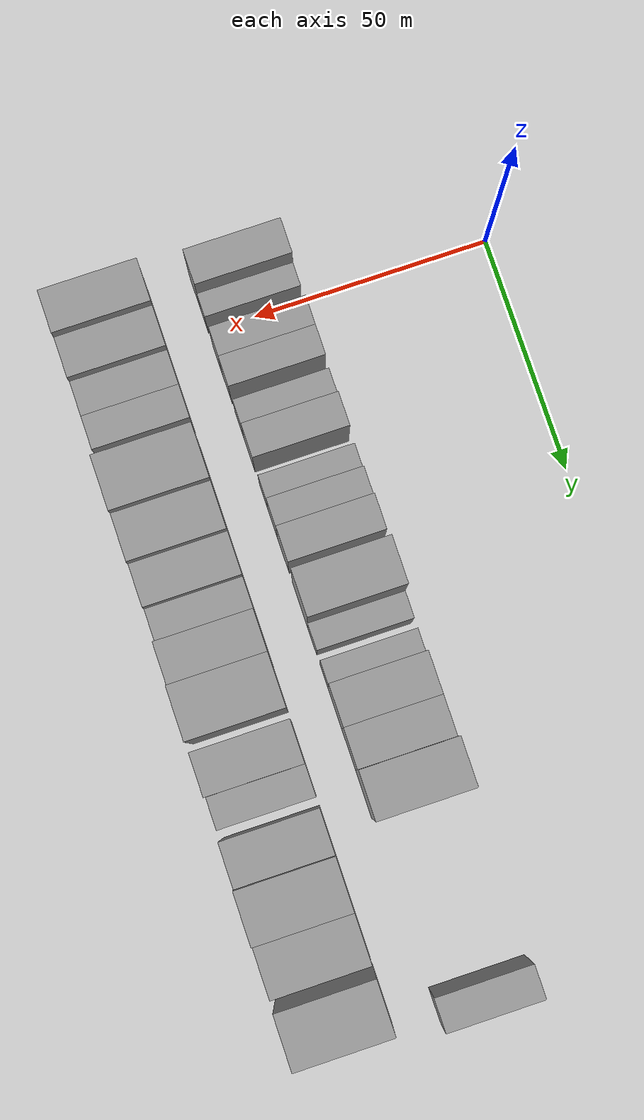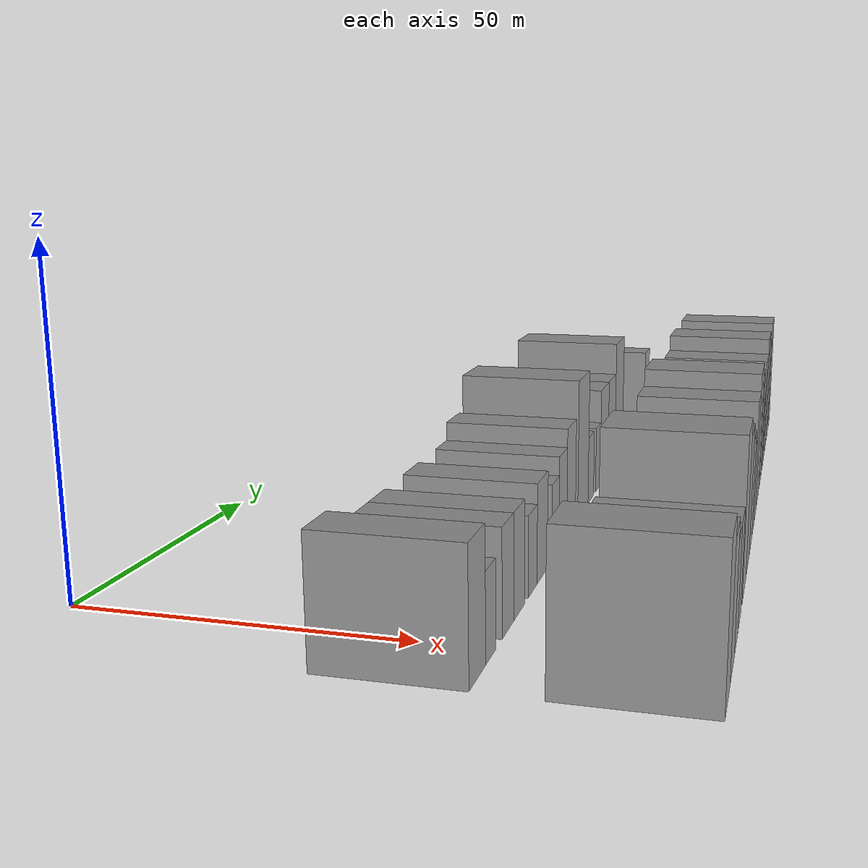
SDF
<sdf version="1.6">
 <world name="default">
  <model name="building_35">
   <static>1</static>
   <pose>50.0000 -8.4018 0 0.000000 0.000000 0.000000</pose>
   <link name="link">
    <pose>0 0 9.00 0 0 0</pose>
    <collision name="collision"><geometry><box><size>20.0000 7.3455 18.0000</size></box></geometry></collision>
    <visual name="visual">
     <cast_shadows>0</cast_shadows>
     <geometry><box><size>20.0000 7.3455 18.0000</size></box></geometry>
     <material>
      <script>
       <uri>model://grey_wall/materials/scripts</uri>
       <uri>model://grey_wall/materials/textures</uri>
       <name>vrc/grey_wall</name>
      </script>
     </material>
    </visual>
   </link>
  </model>
  <model name="building_36">
   <static>1</static>
   <pose>50.0000 -2.2565 0 0.000000 0.000000 0.000000</pose>
   <link name="link">
    <pose>0 0 6.00 0 0 0</pose>
    <collision name="collision"><geometry><box><size>20.0000 4.9450 12.0000</size></box></geometry></collision>
    <visual name="visual">
     <cast_shadows>0</cast_shadows>
     <geometry><box><size>20.0000 4.9450 12.0000</size></box></geometry>
     <material>
      <script>
       <uri>model://grey_wall/materials/scripts</uri>
       <uri>model://grey_wall/materials/textures</uri>
       <name>vrc/grey_wall</name>
      </script>
     </material>
    </visual>
   </link>
  </model>
  <model name="building_37">
   <static>1</static>
   <pose>50.0000 6.2791 0 0.000000 0.000000 0.000000</pose>
   <link name="link">
    <pose>0 0 7.50 0 0 0</pose>
    <collision name="collision"><geometry><box><size>20.0000 6.1263 15.0000</size></box></geometry></collision>
    <visual name="visual">
     <cast_shadows>0</cast_shadows>
     <geometry><box><size>20.0000 6.1263 15.0000</size></box></geometry>
     <material>
      <script>
       <uri>model://grey_wall/materials/scripts</uri>
       <uri>model://grey_wall/materials/textures</uri>
       <name>vrc/grey_wall</name>
      </script>
     </material>
    </visual>
   </link>
  </model>
  <model name="building_38">
   <static>1</static>
   <pose>50.0000 12.5242 0 0.000000 0.000000 0.000000</pose>
   <link name="link">
    <pose>0 0 7.50 0 0 0</pose>
    <collision name="collision"><geometry><box><size>20.0000 6.3640 15.0000</size></box></geometry></collision>
    <visual name="visual">
     <cast_shadows>0</cast_shadows>
     <geometry><box><size>20.0000 6.3640 15.0000</size></box></geometry>
     <material>
      <script>
       <uri>model://grey_wall/materials/scripts</uri>
       <uri>model://grey_wall/materials/textures</uri>
       <name>vrc/grey_wall</name>
      </script>
     </material>
    </visual>
   </link>
  </model>
  <model name="building_39">
   <static>1</static>
   <pose>50.0000 20.5519 0 0.000000 0.000000 0.000000</pose>
   <link name="link">
    <pose>0 0 6.00 0 0 0</pose>
    <collision name="collision"><geometry><box><size>20.0000 5.6913 12.0000</size></box></geometry></collision>
    <visual name="visual">
     <cast_shadows>0</cast_shadows>
     <geometry><box><size>20.0000 5.6913 12.0000</size></box></geometry>
     <material>
      <script>
       <uri>model://grey_wall/materials/scripts</uri>
       <uri>model://grey_wall/materials/textures</uri>
       <name>vrc/grey_wall</name>
      </script>
     </material>
    </visual>
   </link>
  </model>
  <model name="building_40">
   <static>1</static>
   <pose>50.0000 26.9667 0 0.000000 0.000000 0.000000</pose>
   <link name="link">
    <pose>0 0 7.50 0 0 0</pose>
    <collision name="collision"><geometry><box><size>20.0000 7.1382 15.0000</size></box></geometry></collision>
    <visual name="visual">
     <cast_shadows>0</cast_shadows>
     <geometry><box><size>20.0000 7.1382 15.0000</size></box></geometry>
     <material>
      <script>
       <uri>model://grey_wall/materials/scripts</uri>
       <uri>model://grey_wall/materials/textures</uri>
       <name>vrc/grey_wall</name>
      </script>
     </material>
    </visual>
   </link>
  </model>
  <model name="building_41">
   <static>1</static>
   <pose>50.0000 36.2160 0 0.000000 0.000000 0.000000</pose>
   <link name="link">
    <pose>0 0 6.00 0 0 0</pose>
    <collision name="collision"><geometry><box><size>20.0000 5.3605 12.0000</size></box></geometry></collision>
    <visual name="visual">
     <cast_shadows>0</cast_shadows>
     <geometry><box><size>20.0000 5.3605 12.0000</size></box></geometry>
     <material>
      <script>
       <uri>model://grey_wall/materials/scripts</uri>
       <uri>model://grey_wall/materials/textures</uri>
       <name>vrc/grey_wall</name>
      </script>
     </material>
    </visual>
   </link>
  </model>
  <model name="building_42">
   <static>1</static>
   <pose>50.0000 41.9826 0 0.000000 0.000000 0.000000</pose>
   <link name="link">
    <pose>0 0 7.50 0 0 0</pose>
    <collision name="collision"><geometry><box><size>20.0000 6.1726 15.0000</size></box></geometry></collision>
    <visual name="visual">
     <cast_shadows>0</cast_shadows>
     <geometry><box><size>20.0000 6.1726 15.0000</size></box></geometry>
     <material>
      <script>
       <uri>model://grey_wall/materials/scripts</uri>
       <uri>model://grey_wall/materials/textures</uri>
       <name>vrc/grey_wall</name>
      </script>
     </material>
    </visual>
   </link>
  </model>
  <model name="building_43">
   <static>1</static>
   <pose>50.0000 48.7520 0 0.000000 0.000000 0.000000</pose>
   <link name="link">
    <pose>0 0 9.00 0 0 0</pose>
    <collision name="collision"><geometry><box><size>20.0000 7.3661 18.0000</size></box></geometry></collision>
    <visual name="visual">
     <cast_shadows>0</cast_shadows>
     <geometry><box><size>20.0000 7.3661 18.0000</size></box></geometry>
     <material>
      <script>
       <uri>model://grey_wall/materials/scripts</uri>
       <uri>model://grey_wall/materials/textures</uri>
       <name>vrc/grey_wall</name>
      </script>
     </material>
    </visual>
   </link>
  </model>
  <model name="building_44">
   <static>1</static>
   <pose>50.0000 59.3353 0 0.000000 0.000000 0.000000</pose>
   <link name="link">
    <pose>0 0 12.00 0 0 0</pose>
    <collision name="collision"><geometry><box><size>20.0000 9.8005 24.0000</size></box></geometry></collision>
    <visual name="visual">
     <cast_shadows>0</cast_shadows>
     <geometry><box><size>20.0000 9.8005 24.0000</size></box></geometry>
     <material>
      <script>
       <uri>model://grey_wall/materials/scripts</uri>
       <uri>model://grey_wall/materials/textures</uri>
       <name>vrc/grey_wall</name>
      </script>
     </material>
    </visual>
   </link>
  </model>
  <model name="building_45">
   <static>1</static>
   <pose>50.0000 67.0383 0 0.000000 0.000000 0.000000</pose>
   <link name="link">
    <pose>0 0 6.00 0 0 0</pose>
    <collision name="collision"><geometry><box><size>20.0000 5.6055 12.0000</size></box></geometry></collision>
    <visual name="visual">
     <cast_shadows>0</cast_shadows>
     <geometry><box><size>20.0000 5.6055 12.0000</size></box></geometry>
     <material>
      <script>
       <uri>model://grey_wall/materials/scripts</uri>
       <uri>model://grey_wall/materials/textures</uri>
       <name>vrc/grey_wall</name>
      </script>
     </material>
    </visual>
   </link>
  </model>
  <model name="building_46">
   <static>1</static>
   <pose>50.0000 74.3523 0 0.000000 0.000000 0.000000</pose>
   <link name="link">
    <pose>0 0 6.00 0 0 0</pose>
    <collision name="collision"><geometry><box><size>20.0000 5.0224 12.0000</size></box></geometry></collision>
    <visual name="visual">
     <cast_shadows>0</cast_shadows>
     <geometry><box><size>20.0000 5.0224 12.0000</size></box></geometry>
     <material>
      <script>
       <uri>model://grey_wall/materials/scripts</uri>
       <uri>model://grey_wall/materials/textures</uri>
       <name>vrc/grey_wall</name>
      </script>
     </material>
    </visual>
   </link>
  </model>
  <model name="building_47">
   <static>1</static>
   <pose>50.0000 81.2639 0 0.000000 0.000000 0.000000</pose>
   <link name="link">
    <pose>0 0 9.00 0 0 0</pose>
    <collision name="collision"><geometry><box><size>20.0000 8.8008 18.0000</size></box></geometry></collision>
    <visual name="visual">
     <cast_shadows>0</cast_shadows>
     <geometry><box><size>20.0000 8.8008 18.0000</size></box></geometry>
     <material>
      <script>
       <uri>model://grey_wall/materials/scripts</uri>
       <uri>model://grey_wall/materials/textures</uri>
       <name>vrc/grey_wall</name>
      </script>
     </material>
    </visual>
   </link>
  </model>
  <model name="building_48">
   <static>1</static>
   <pose>50.0000 89.8656 0 0.000000 0.000000 0.000000</pose>
   <link name="link">
    <pose>0 0 9.00 0 0 0</pose>
    <collision name="collision"><geometry><box><size>20.0000 8.4025 18.0000</size></box></geometry></collision>
    <visual name="visual">
     <cast_shadows>0</cast_shadows>
     <geometry><box><size>20.0000 8.4025 18.0000</size></box></geometry>
     <material>
      <script>
       <uri>model://grey_wall/materials/scripts</uri>
       <uri>model://grey_wall/materials/textures</uri>
       <name>vrc/grey_wall</name>
      </script>
     </material>
    </visual>
   </link>
  </model>
  <model name="building_49">
   <static>1</static>
   <pose>50.0000 99.1146 0 0.000000 0.000000 0.000000</pose>
   <link name="link">
    <pose>0 0 12.00 0 0 0</pose>
    <collision name="collision"><geometry><box><size>20.0000 10.0955 24.0000</size></box></geometry></collision>
    <visual name="visual">
     <cast_shadows>0</cast_shadows>
     <geometry><box><size>20.0000 10.0955 24.0000</size></box></geometry>
     <material>
      <script>
       <uri>model://grey_wall/materials/scripts</uri>
       <uri>model://grey_wall/materials/textures</uri>
       <name>vrc/grey_wall</name>
      </script>
     </material>
    </visual>
   </link>
  </model>
  <model name="building_50">
   <static>1</static>
   <pose>50.0000 142.6210 0 0.000000 0.000000 0.000000</pose>
   <link name="link">
    <pose>0 0 7.50 0 0 0</pose>
    <collision name="collision"><geometry><box><size>20.0000 6.9724 15.0000</size></box></geometry></collision>
    <visual name="visual">
     <cast_shadows>0</cast_shadows>
     <geometry><box><size>20.0000 6.9724 15.0000</size></box></geometry>
     <material>
      <script>
       <uri>model://grey_wall/materials/scripts</uri>
       <uri>model://grey_wall/materials/textures</uri>
       <name>vrc/grey_wall</name>
      </script>
     </material>
    </visual>
   </link>
  </model>
  <model name="building_97">
   <static>1</static>
   <pose>79.0000 -7.8592 0 0.000000 0.000000 0.000000</pose>
   <link name="link">
    <pose>0 0 10.50 0 0 0</pose>
    <collision name="collision"><geometry><box><size>20.0000 8.8531 21.0000</size></box></geometry></collision>
    <visual name="visual">
     <cast_shadows>0</cast_shadows>
     <geometry><box><size>20.0000 8.8531 21.0000</size></box></geometry>
     <material>
      <script>
       <uri>model://grey_wall/materials/scripts</uri>
       <uri>model://grey_wall/materials/textures</uri>
       <name>vrc/grey_wall</name>
      </script>
     </material>
    </visual>
   </link>
  </model>
  <model name="building_98">
   <static>1</static>
   <pose>79.0000 0.7653 0 0.000000 0.000000 0.000000</pose>
   <link name="link">
    <pose>0 0 9.00 0 0 0</pose>
    <collision name="collision"><geometry><box><size>20.0000 8.3959 18.0000</size></box></geometry></collision>
    <visual name="visual">
     <cast_shadows>0</cast_shadows>
     <geometry><box><size>20.0000 8.3959 18.0000</size></box></geometry>
     <material>
      <script>
       <uri>model://grey_wall/materials/scripts</uri>
       <uri>model://grey_wall/materials/textures</uri>
       <name>vrc/grey_wall</name>
      </script>
     </material>
    </visual>
   </link>
  </model>
  <model name="building_99">
   <static>1</static>
   <pose>79.0000 8.5710 0 0.000000 0.000000 0.000000</pose>
   <link name="link">
    <pose>0 0 7.50 0 0 0</pose>
    <collision name="collision"><geometry><box><size>20.0000 7.2154 15.0000</size></box></geometry></collision>
    <visual name="visual">
     <cast_shadows>0</cast_shadows>
     <geometry><box><size>20.0000 7.2154 15.0000</size></box></geometry>
     <material>
      <script>
       <uri>model://grey_wall/materials/scripts</uri>
       <uri>model://grey_wall/materials/textures</uri>
       <name>vrc/grey_wall</name>
      </script>
     </material>
    </visual>
   </link>
  </model>
  <model name="building_100">
   <static>1</static>
   <pose>79.0000 15.6614 0 0.000000 0.000000 0.000000</pose>
   <link name="link">
    <pose>0 0 7.50 0 0 0</pose>
    <collision name="collision"><geometry><box><size>20.0000 6.9654 15.0000</size></box></geometry></collision>
    <visual name="visual">
     <cast_shadows>0</cast_shadows>
     <geometry><box><size>20.0000 6.9654 15.0000</size></box></geometry>
     <material>
      <script>
       <uri>model://grey_wall/materials/scripts</uri>
       <uri>model://grey_wall/materials/textures</uri>
       <name>vrc/grey_wall</name>
      </script>
     </material>
    </visual>
   </link>
  </model>
  <model name="building_101">
   <static>1</static>
   <pose>79.0000 27.7389 0 0.000000 0.000000 0.000000</pose>
   <link name="link">
    <pose>0 0 12.00 0 0 0</pose>
    <collision name="collision"><geometry><box><size>20.0000 11.1896 24.0000</size></box></geometry></collision>
    <visual name="visual">
     <cast_shadows>0</cast_shadows>
     <geometry><box><size>20.0000 11.1896 24.0000</size></box></geometry>
     <material>
      <script>
       <uri>model://grey_wall/materials/scripts</uri>
       <uri>model://grey_wall/materials/textures</uri>
       <name>vrc/grey_wall</name>
      </script>
     </material>
    </visual>
   </link>
  </model>
  <model name="building_102">
   <static>1</static>
   <pose>79.0000 38.2096 0 0.000000 0.000000 0.000000</pose>
   <link name="link">
    <pose>0 0 10.50 0 0 0</pose>
    <collision name="collision"><geometry><box><size>20.0000 9.7517 21.0000</size></box></geometry></collision>
    <visual name="visual">
     <cast_shadows>0</cast_shadows>
     <geometry><box><size>20.0000 9.7517 21.0000</size></box></geometry>
     <material>
      <script>
       <uri>model://grey_wall/materials/scripts</uri>
       <uri>model://grey_wall/materials/textures</uri>
       <name>vrc/grey_wall</name>
      </script>
     </material>
    </visual>
   </link>
  </model>
  <model name="building_103">
   <static>1</static>
   <pose>79.0000 47.4972 0 0.000000 0.000000 0.000000</pose>
   <link name="link">
    <pose>0 0 9.00 0 0 0</pose>
    <collision name="collision"><geometry><box><size>20.0000 8.8235 18.0000</size></box></geometry></collision>
    <visual name="visual">
     <cast_shadows>0</cast_shadows>
     <geometry><box><size>20.0000 8.8235 18.0000</size></box></geometry>
     <material>
      <script>
       <uri>model://grey_wall/materials/scripts</uri>
       <uri>model://grey_wall/materials/textures</uri>
       <name>vrc/grey_wall</name>
      </script>
     </material>
    </visual>
   </link>
  </model>
  <model name="building_104">
   <static>1</static>
   <pose>79.0000 55.4699 0 0.000000 0.000000 0.000000</pose>
   <link name="link">
    <pose>0 0 7.50 0 0 0</pose>
    <collision name="collision"><geometry><box><size>20.0000 7.1220 15.0000</size></box></geometry></collision>
    <visual name="visual">
     <cast_shadows>0</cast_shadows>
     <geometry><box><size>20.0000 7.1220 15.0000</size></box></geometry>
     <material>
      <script>
       <uri>model://grey_wall/materials/scripts</uri>
       <uri>model://grey_wall/materials/textures</uri>
       <name>vrc/grey_wall</name>
      </script>
     </material>
    </visual>
   </link>
  </model>
  <model name="building_105">
   <static>1</static>
   <pose>79.0000 63.4472 0 0.000000 0.000000 0.000000</pose>
   <link name="link">
    <pose>0 0 10.50 0 0 0</pose>
    <collision name="collision"><geometry><box><size>20.0000 8.8326 21.0000</size></box></geometry></collision>
    <visual name="visual">
     <cast_shadows>0</cast_shadows>
     <geometry><box><size>20.0000 8.8326 21.0000</size></box></geometry>
     <material>
      <script>
       <uri>model://grey_wall/materials/scripts</uri>
       <uri>model://grey_wall/materials/textures</uri>
       <name>vrc/grey_wall</name>
      </script>
     </material>
    </visual>
   </link>
  </model>
  <model name="building_106">
   <static>1</static>
   <pose>79.0000 73.4060 0 0.000000 0.000000 0.000000</pose>
   <link name="link">
    <pose>0 0 12.00 0 0 0</pose>
    <collision name="collision"><geometry><box><size>20.0000 11.0851 24.0000</size></box></geometry></collision>
    <visual name="visual">
     <cast_shadows>0</cast_shadows>
     <geometry><box><size>20.0000 11.0851 24.0000</size></box></geometry>
     <material>
      <script>
       <uri>model://grey_wall/materials/scripts</uri>
       <uri>model://grey_wall/materials/textures</uri>
       <name>vrc/grey_wall</name>
      </script>
     </material>
    </visual>
   </link>
  </model>
  <model name="building_107">
   <static>1</static>
   <pose>79.0000 85.3860 0 0.000000 0.000000 0.000000</pose>
   <link name="link">
    <pose>0 0 10.50 0 0 0</pose>
    <collision name="collision"><geometry><box><size>20.0000 8.8749 21.0000</size></box></geometry></collision>
    <visual name="visual">
     <cast_shadows>0</cast_shadows>
     <geometry><box><size>20.0000 8.8749 21.0000</size></box></geometry>
     <material>
      <script>
       <uri>model://grey_wall/materials/scripts</uri>
       <uri>model://grey_wall/materials/textures</uri>
       <name>vrc/grey_wall</name>
      </script>
     </material>
    </visual>
   </link>
  </model>
  <model name="building_108">
   <static>1</static>
   <pose>79.0000 93.1438 0 0.000000 0.000000 0.000000</pose>
   <link name="link">
    <pose>0 0 7.50 0 0 0</pose>
    <collision name="collision"><geometry><box><size>20.0000 6.6408 15.0000</size></box></geometry></collision>
    <visual name="visual">
     <cast_shadows>0</cast_shadows>
     <geometry><box><size>20.0000 6.6408 15.0000</size></box></geometry>
     <material>
      <script>
       <uri>model://grey_wall/materials/scripts</uri>
       <uri>model://grey_wall/materials/textures</uri>
       <name>vrc/grey_wall</name>
      </script>
     </material>
    </visual>
   </link>
  </model>
  <model name="building_109">
   <static>1</static>
   <pose>79.0000 103.0847 0 0.000000 0.000000 0.000000</pose>
   <link name="link">
    <pose>0 0 10.50 0 0 0</pose>
    <collision name="collision"><geometry><box><size>20.0000 9.2410 21.0000</size></box></geometry></collision>
    <visual name="visual">
     <cast_shadows>0</cast_shadows>
     <geometry><box><size>20.0000 9.2410 21.0000</size></box></geometry>
     <material>
      <script>
       <uri>model://grey_wall/materials/scripts</uri>
       <uri>model://grey_wall/materials/textures</uri>
       <name>vrc/grey_wall</name>
      </script>
     </material>
    </visual>
   </link>
  </model>
  <model name="building_110">
   <static>1</static>
   <pose>79.0000 113.1463 0 0.000000 0.000000 0.000000</pose>
   <link name="link">
    <pose>0 0 12.00 0 0 0</pose>
    <collision name="collision"><geometry><box><size>20.0000 10.8822 24.0000</size></box></geometry></collision>
    <visual name="visual">
     <cast_shadows>0</cast_shadows>
     <geometry><box><size>20.0000 10.8822 24.0000</size></box></geometry>
     <material>
      <script>
       <uri>model://grey_wall/materials/scripts</uri>
       <uri>model://grey_wall/materials/textures</uri>
       <name>vrc/grey_wall</name>
      </script>
     </material>
    </visual>
   </link>
  </model>
  <model name="building_111">
   <static>1</static>
   <pose>79.0000 123.8330 0 0.000000 0.000000 0.000000</pose>
   <link name="link">
    <pose>0 0 10.50 0 0 0</pose>
    <collision name="collision"><geometry><box><size>20.0000 10.4914 21.0000</size></box></geometry></collision>
    <visual name="visual">
     <cast_shadows>0</cast_shadows>
     <geometry><box><size>20.0000 10.4914 21.0000</size></box></geometry>
     <material>
      <script>
       <uri>model://grey_wall/materials/scripts</uri>
       <uri>model://grey_wall/materials/textures</uri>
       <name>vrc/grey_wall</name>
      </script>
     </material>
    </visual>
   </link>
  </model>
  <model name="building_112">
   <static>1</static>
   <pose>79.0000 136.6675 0 0.000000 0.000000 0.000000</pose>
   <link name="link">
    <pose>0 0 12.00 0 0 0</pose>
    <collision name="collision"><geometry><box><size>20.0000 11.1775 24.0000</size></box></geometry></collision>
    <visual name="visual">
     <cast_shadows>0</cast_shadows>
     <geometry><box><size>20.0000 11.1775 24.0000</size></box></geometry>
     <material>
      <script>
       <uri>model://grey_wall/materials/scripts</uri>
       <uri>model://grey_wall/materials/textures</uri>
       <name>vrc/grey_wall</name>
      </script>
     </material>
    </visual>
   </link>
  </model>
 </world>
</sdf>
